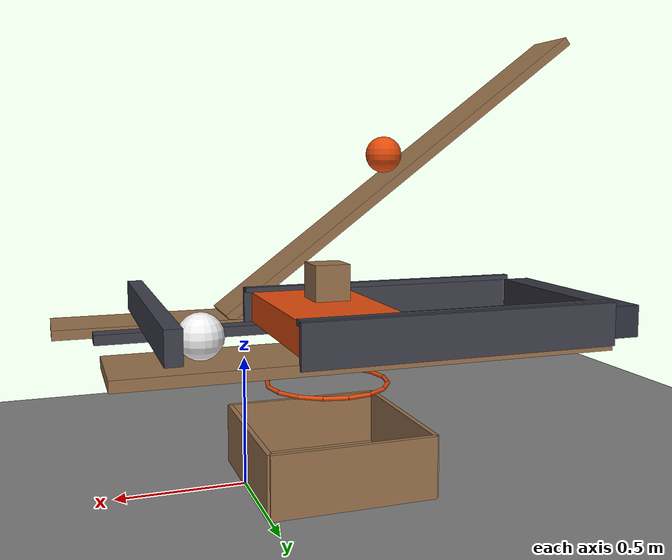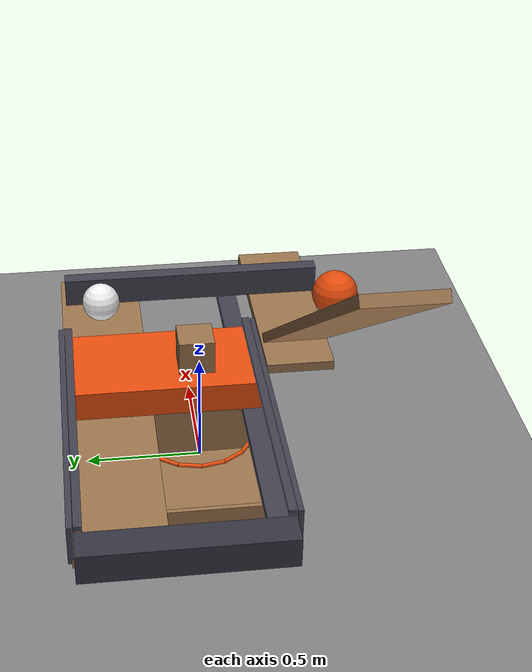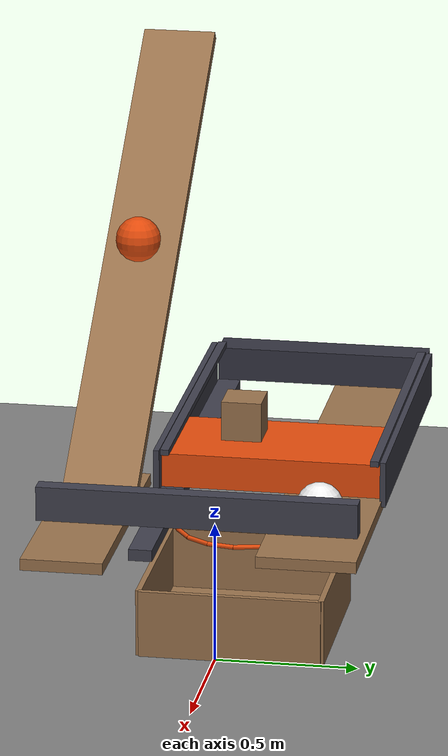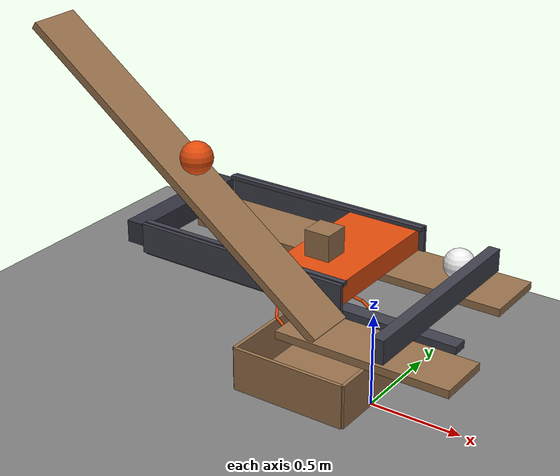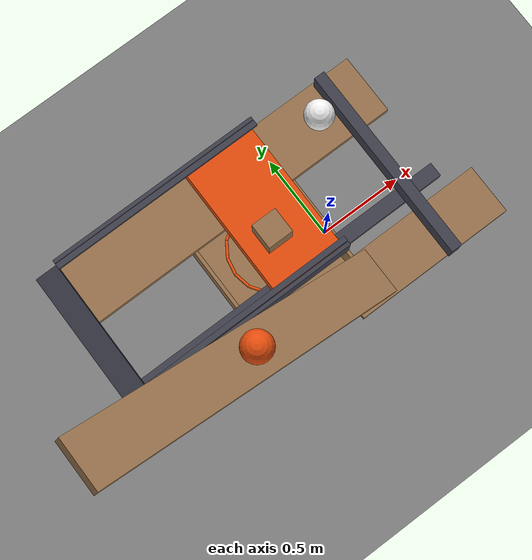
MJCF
<mujoco model="ramp_rotor_latch_release">
  <compiler angle="radian"/>
  <option timestep="0.002"/>
  <worldbody>
    <geom name="floor" type="plane" size="6 6 0.1" friction="0.8 0.005 0.002"/>
    <body name="ramp">
      <geom name="ramp" type="box" pos="-0.8 -0.4 1.2" size="1 0.13 0.02" euler="0 0.643501 0" friction="0.6 0.001 0.001" rgba="0.6 0.45 0.3 1"/>
    </body>
    <body name="ball1 runway">
      <geom name="ball1 runway" type="box" pos="0.25 -0.4 0.58" size="0.45 0.14 0.02" friction="0.6 0.001 0.001" rgba="0.6 0.45 0.3 1"/>
    </body>
    <body name="ball1" pos="-0.74 -0.4 1.28">
      <freejoint/>
      <geom name="ball1" type="sphere" pos="0 0 0" size="0.08" mass="0.8" condim="6" friction="0.6 0.001 0.001" solref="0.01 1" rgba="0.9 0.3 0.05 1"/>
    </body>
    <body name="rotor" pos="0.35 0 0.68">
      <joint name="rotor_hinge" type="hinge" pos="0 0 0" axis="0 0 1" limited="true" range="0 0.610865" damping="0.01" armature="0.003"/>
      <geom name="rotor" type="box" pos="0 0 0" size="0.03 0.55 0.06" mass="0.25" friction="0.2 0.005 0.0001" solref="0.01 1" rgba="0.25 0.25 0.3 1"/>
    </body>
    <body name="ball2 runway">
      <geom name="ball2 runway" type="box" pos="-0.35 0.4 0.58" size="0.9 0.17 0.02" friction="0.03 0.001 0.001" rgba="0.6 0.45 0.3 1"/>
    </body>
    <body name="ball2" pos="0.239 0.4 0.68">
      <freejoint/>
      <geom name="ball2" type="sphere" pos="0 0 0" size="0.08" mass="0.4" condim="6" friction="0.3 0.001 0.001" solref="0.01 1" rgba="0.95 0.95 0.95 1"/>
    </body>
    <body name="latch lower runner">
      <geom name="latch lower runner" type="box" pos="-0.35 -0.16 0.58" size="0.9 0.04 0.02" friction="0.01 0.005 0.0001" rgba="0.25 0.25 0.3 1"/>
    </body>
    <body name="latch lower guide">
      <geom name="latch lower guide" type="box" pos="-0.65 -0.214 0.66" size="0.6 0.01 0.08" friction="0.01 0.005 0.0001" rgba="0.25 0.25 0.3 1"/>
    </body>
    <body name="latch upper guide">
      <geom name="latch upper guide" type="box" pos="-0.65 0.574 0.66" size="0.6 0.01 0.08" friction="0.01 0.005 0.0001" rgba="0.25 0.25 0.3 1"/>
    </body>
    <body name="latch lower keeper">
      <geom name="latch lower keeper" type="box" pos="-0.65 -0.185 0.734" size="0.6 0.015 0.01" friction="0.01 0.005 0.0001" rgba="0.25 0.25 0.3 1"/>
    </body>
    <body name="latch upper keeper">
      <geom name="latch upper keeper" type="box" pos="-0.65 0.545 0.734" size="0.6 0.015 0.01" friction="0.01 0.005 0.0001" rgba="0.25 0.25 0.3 1"/>
    </body>
    <body name="latch stop">
      <geom name="latch stop" type="box" pos="-1.31 0.18 0.66" size="0.06 0.38 0.06" friction="0.01 0.005 0.0001" solref="0.01 1" rgba="0.2 0.2 0.25 1"/>
    </body>
    <body name="latch" pos="-0.28 0.18 0.66">
      <freejoint/>
      <geom name="latch" type="box" pos="0 0 0" size="0.2 0.38 0.06" mass="0.12" friction="0.01 0.001 0.001" solref="0.01 1" rgba="0.9 0.3 0.05 1"/>
    </body>
    <body name="block" pos="-0.32 0.05 0.79">
      <freejoint/>
      <geom name="block" type="box" pos="0 0 0" size="0.07 0.07 0.07" mass="0.25" friction="0.01 0.005 0.0001" solref="0.01 1" rgba="0.6 0.45 0.3 1"/>
    </body>
    <body name="ring">
      <geom name="ring_00" type="capsule" size="0.008" fromto="-0.082 0.05 0.39 -0.100117 0.141079 0.39" rgba="0.9 0.3 0.05 1"/>
      <geom name="ring_01" type="capsule" size="0.008" fromto="-0.100117 0.141079 0.39 -0.151709 0.218291 0.39" rgba="0.9 0.3 0.05 1"/>
      <geom name="ring_02" type="capsule" size="0.008" fromto="-0.151709 0.218291 0.39 -0.228921 0.269883 0.39" rgba="0.9 0.3 0.05 1"/>
      <geom name="ring_03" type="capsule" size="0.008" fromto="-0.228921 0.269883 0.39 -0.32 0.288 0.39" rgba="0.9 0.3 0.05 1"/>
      <geom name="ring_04" type="capsule" size="0.008" fromto="-0.32 0.288 0.39 -0.411079 0.269883 0.39" rgba="0.9 0.3 0.05 1"/>
      <geom name="ring_05" type="capsule" size="0.008" fromto="-0.411079 0.269883 0.39 -0.488291 0.218291 0.39" rgba="0.9 0.3 0.05 1"/>
      <geom name="ring_06" type="capsule" size="0.008" fromto="-0.488291 0.218291 0.39 -0.539883 0.141079 0.39" rgba="0.9 0.3 0.05 1"/>
      <geom name="ring_07" type="capsule" size="0.008" fromto="-0.539883 0.141079 0.39 -0.558 0.05 0.39" rgba="0.9 0.3 0.05 1"/>
      <geom name="ring_08" type="capsule" size="0.008" fromto="-0.558 0.05 0.39 -0.539883 -0.0410787 0.39" rgba="0.9 0.3 0.05 1"/>
      <geom name="ring_09" type="capsule" size="0.008" fromto="-0.539883 -0.0410787 0.39 -0.488291 -0.118291 0.39" rgba="0.9 0.3 0.05 1"/>
      <geom name="ring_10" type="capsule" size="0.008" fromto="-0.488291 -0.118291 0.39 -0.411079 -0.169883 0.39" rgba="0.9 0.3 0.05 1"/>
      <geom name="ring_11" type="capsule" size="0.008" fromto="-0.411079 -0.169883 0.39 -0.32 -0.188 0.39" rgba="0.9 0.3 0.05 1"/>
      <geom name="ring_12" type="capsule" size="0.008" fromto="-0.32 -0.188 0.39 -0.228921 -0.169883 0.39" rgba="0.9 0.3 0.05 1"/>
      <geom name="ring_13" type="capsule" size="0.008" fromto="-0.228921 -0.169883 0.39 -0.151709 -0.118291 0.39" rgba="0.9 0.3 0.05 1"/>
      <geom name="ring_14" type="capsule" size="0.008" fromto="-0.151709 -0.118291 0.39 -0.100117 -0.0410787 0.39" rgba="0.9 0.3 0.05 1"/>
      <geom name="ring_15" type="capsule" size="0.008" fromto="-0.100117 -0.0410787 0.39 -0.082 0.05 0.39" rgba="0.9 0.3 0.05 1"/>
    </body>
    <body name="box">
      <geom name="box_base" type="box" pos="-0.32 0.05 0.01" size="0.32 0.32 0.01" friction="0.8 0.01 0.004" solref="0.01 1" rgba="0.6 0.45 0.3 1"/>
      <geom name="box_near_wall" type="box" pos="-0.64 0.05 0.12" size="0.01 0.32 0.12" friction="0.8 0.01 0.004" solref="0.01 1" rgba="0.6 0.45 0.3 1"/>
      <geom name="box_far_wall" type="box" pos="0 0.05 0.12" size="0.01 0.32 0.12" friction="0.8 0.01 0.004" solref="0.01 1" rgba="0.6 0.45 0.3 1"/>
      <geom name="box_left_wall" type="box" pos="-0.32 0.37 0.12" size="0.32 0.01 0.12" friction="0.8 0.01 0.004" solref="0.01 1" rgba="0.6 0.45 0.3 1"/>
      <geom name="box_right_wall" type="box" pos="-0.32 -0.27 0.12" size="0.32 0.01 0.12" friction="0.8 0.01 0.004" solref="0.01 1" rgba="0.6 0.45 0.3 1"/>
    </body>
  </worldbody>
  <keyframe>
    <key name="start" qpos="-0.74 -0.4 1.28 1 0 0 0 0 0.239 0.4 0.68 1 0 0 0 -0.28 0.18 0.66 1 0 0 0 -0.32 0.05 0.79 1 0 0 0" qvel="0 0 0 0 0 0 0 0 0 0 0 0 0 0 0 0 0 0 0 0 0 0 0 0 0"/>
  </keyframe>
</mujoco>
